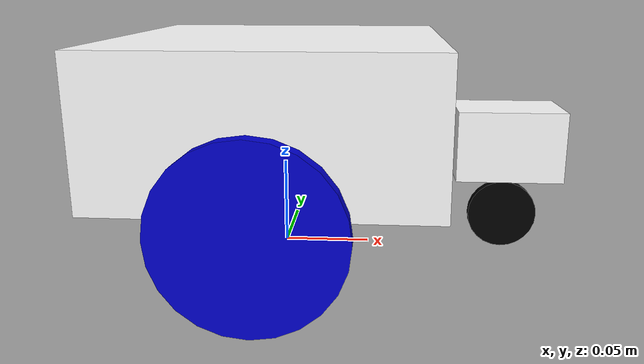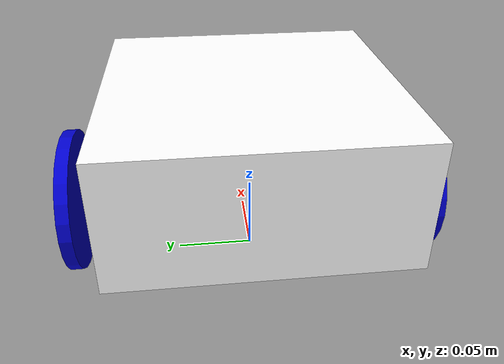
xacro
<?xml version="1.0"?>

<robot name="simple_robot" xmlns:xacro="http://www.ros.org/wiki/xacro">

  <link name="world"/>

  <joint name="fixed" type="fixed">
    <parent link="world"/>
    <child link="base_link"/>
  </joint>

  <link name="base_link">
    <visual>
      <origin rpy="0 0 0" xyz="0 0 0.085"/>
      <geometry>
        <box size="0.18 0.18 0.08"/>
      </geometry>
      <material name="white">
        <color rgba="1 1 1 1"/>
      </material>
    </visual>
    <inertial>
      <origin rpy="0 0 0" xyz="0 0 0.085"/>
      <mass value="1"/>
      <inertia ixx="0.0" ixy="0.0" ixz="0.0" iyy="0.0" iyz="0.0" izz="0.0"/>
    </inertial>
  </link>

  <joint name="base_to_left_wheel" type="fixed">
    <parent link="base_link"/>
    <child link="left_wheel"/>
    <origin xyz="0 0.115 0.046" rpy="1.5708 0 0"/>
  </joint>

  <link name="left_wheel">
    <visual>
      <origin xyz="0 0 0" rpy="0 0 0"/>
      <geometry>
        <cylinder length="0.008" radius="0.046"/>
      </geometry>
      <material name="blue">
        <color rgba="0.0 0.0 0.8 1.0"/>
      </material>
    </visual>
    <inertial>
      <origin xyz="0 0 0" rpy="0 0 0"/>
      <mass value="0.2"/>
      <inertia ixx="0.0" ixy="0.0" ixz="0.0" iyy="0.0" iyz="0.0" izz="0.0"/>
    </inertial>
  </link>

  <joint name="base_to_right_wheel" type="fixed">
    <parent link="base_link"/>
    <child link="right_wheel"/>
    <origin xyz="0 -0.115 0.046" rpy="-1.5708 0 0"/>
  </joint>

  <link name="right_wheel">
    <visual>
      <origin xyz="0 0 0" rpy="0 0 0"/>
      <geometry>
        <cylinder length="0.008" radius="0.046"/>
      </geometry>
      <material name="blue">
        <color rgba="0.0 0.0 0.8 1.0"/>
      </material>
    </visual>
    <inertial>
      <origin xyz="0 0 0" rpy="0 0 0"/>
      <mass value="0.2"/>
      <inertia ixx="0.0" ixy="0.0" ixz="0.0" iyy="0.0" iyz="0.0" izz="0.0"/>
    </inertial>
  </link>

  <joint name="base_to_free_wheel_cxn" type="fixed">
    <parent link="base_link"/>
    <child link="free_wheel_cxn"/>
    <origin xyz="0 0 0" rpy="0 0 0"/>
  </joint>

  <link name="free_wheel_cxn">
    <visual>
      <geometry>
        <box size="0.06 0.04 0.04"/>
      </geometry>
      <origin rpy="0 0 0" xyz="0.13 0 0.065"/>
      <material name="white">
        <color rgba="1 1 1 1"/>
      </material>
    </visual>
    <inertial>
      <origin rpy="0 0 0" xyz="0.12 0 0.08"/>
      <mass value="0.2"/>
      <inertia ixx="0.0" ixy="0.0" ixz="0.0" iyy="0.0" iyz="0.0" izz="0.0"/>
    </inertial>
  </link>

  <link name="free_wheel">
    <visual>
      <geometry>
        <cylinder length="0.005" radius="0.020"/>
      </geometry>
      <origin rpy="1.578 0 0" xyz="0 0 0"/>
      <material name="black">
        <color rgba="0 0 0 1"/>
      </material>
    </visual>
    <inertial>
      <origin rpy="1.578 0 0" xyz="0 0 0"/>
      <mass value="0.2"/>
      <inertia ixx="0.0" ixy="0.0" ixz="0.0" iyy="0.0" iyz="0.0" izz="0.0"/>
    </inertial>
  </link>

  <joint name="cxn_to_free_wheel" type="fixed">
    <parent link="free_wheel_cxn"/>
    <child link="free_wheel"/>
    <origin xyz="0.13 0 0.02" rpy="0 0 0"/>
  </joint>

  <transmission name="left_wheel">
    <type>transmission_interface/SimpleTransmission</type>
    <joint name="base_to_left_wheel">
      <hardwareInterface>EffortJointInterface</hardwareInterface>
    </joint>
    <actuator name="motor1">
      <hardwareInterface>EffortJointInterface</hardwareInterface>
      <mechanicalReduction>1</mechanicalReduction>
    </actuator>
  </transmission>

  <transmission name="right_wheel">
    <type>transmission_interface/SimpleTransmission</type>
    <joint name="base_to_right_wheel">
      <hardwareInterface>EffortJointInterface</hardwareInterface>
    </joint>
    <actuator name="motor2">
      <hardwareInterface>EffortJointInterface</hardwareInterface>
      <mechanicalReduction>1</mechanicalReduction>
    </actuator>
  </transmission>

</robot>
